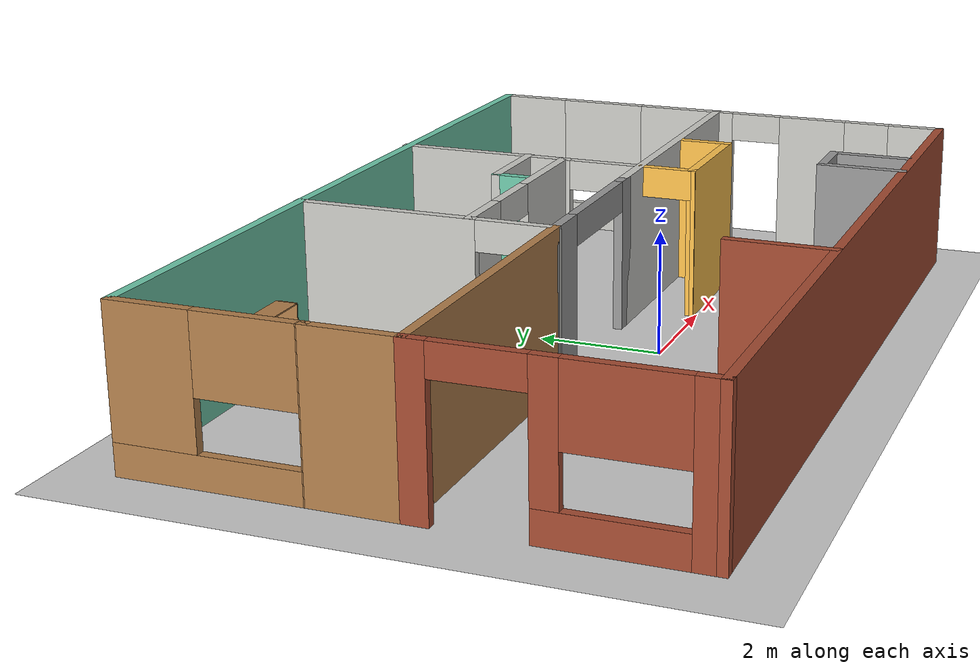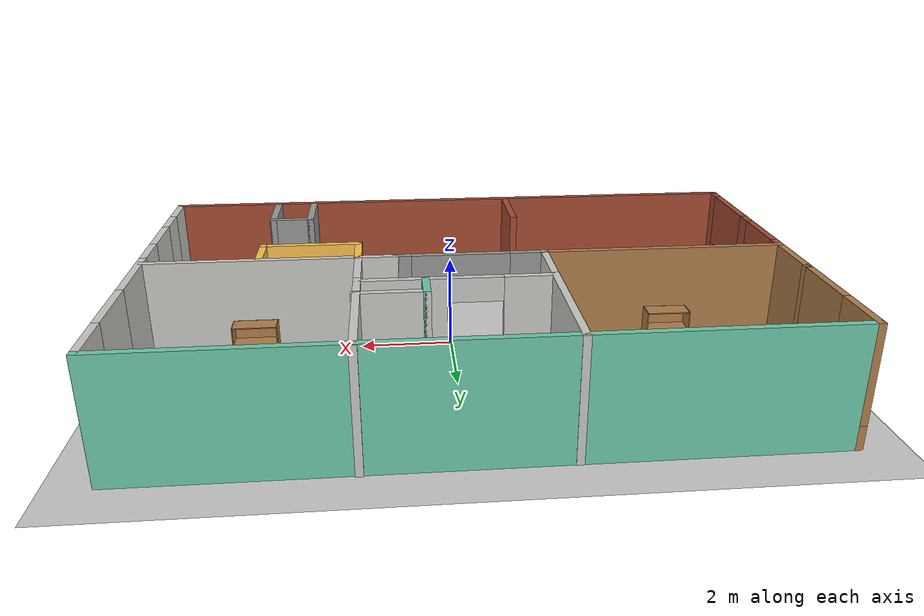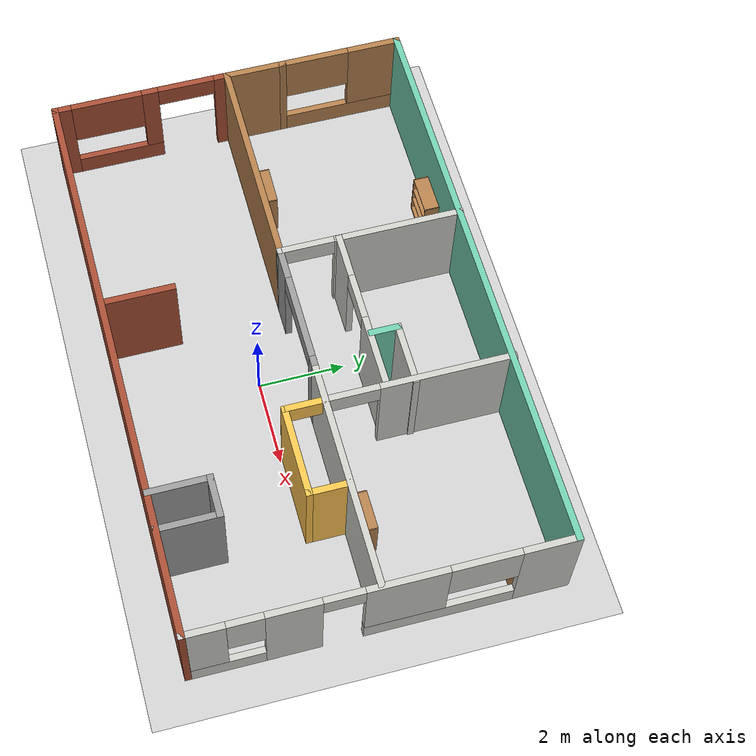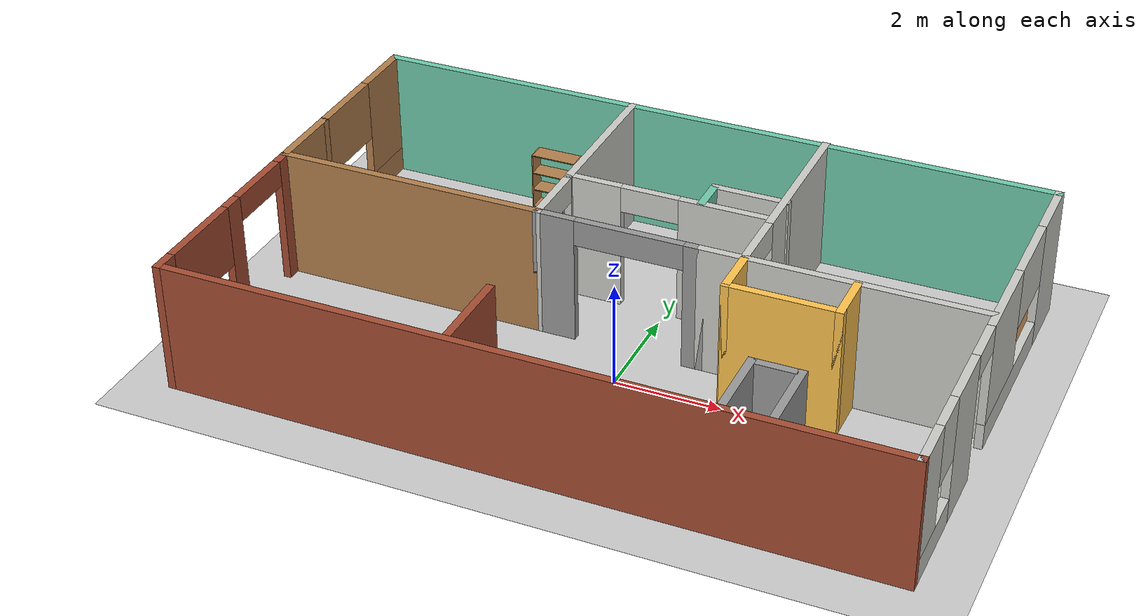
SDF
<sdf version="1.6">
 <world name="default">
  <model name="ground_plane">
   <static>1</static>
   <link name="link">
    <collision name="collision">
     <geometry><plane><normal>0 0 1</normal><size>100 100</size></plane></geometry>
     <surface>
      <contact><collide_bitmask>65535</collide_bitmask></contact>
      <friction><ode><mu>100</mu><mu2>50</mu2></ode></friction>
     </surface>
    </collision>
    <visual name="visual">
     <cast_shadows>0</cast_shadows>
     <geometry><plane><normal>0 0 1</normal><size>100 100</size></plane></geometry>
     <material>
      <script><uri>file://media/materials/scripts/gazebo.material</uri><name>Gazebo/Grey</name></script>
     </material>
    </visual>
   </link>
  </model>
  <model name="apartment">
   <pose>-0.330158 1.04797 0 0 -0 0</pose>
   <link name="Wall_0">
    <collision name="Wall_0_Collision">
     <geometry><box><size>1.5 0.15 2.5</size></box></geometry>
     <pose>0 0 1.25 0 -0 0</pose>
    </collision>
    <visual name="Wall_0_Visual">
     <pose>0 0 1.25 0 -0 0</pose>
     <geometry><box><size>1.5 0.15 2.5</size></box></geometry>
     <material>
      <script><uri>file://media/materials/scripts/gazebo.material</uri><name>Gazebo/Wood</name></script>
      <ambient>1 1 1 1</ambient>
     </material>
     <meta><layer>0</layer></meta>
    </visual>
    <pose>-6.675 0.636067 0 0 -0 1.5708</pose>
   </link>
   <link name="Wall_10">
    <collision name="Wall_10_Collision">
     <geometry><box><size>1.5 0.15 2.5</size></box></geometry>
     <pose>0 0 1.25 0 -0 0</pose>
    </collision>
    <visual name="Wall_10_Visual">
     <pose>0 0 1.25 0 -0 0</pose>
     <geometry><box><size>1.5 0.15 2.5</size></box></geometry>
     <material>
      <script><uri>file://media/materials/scripts/gazebo.material</uri><name>Gazebo/Grey</name></script>
      <ambient>1 1 1 1</ambient>
     </material>
     <meta><layer>0</layer></meta>
    </visual>
    <pose>3.45672 -3.50331 0 0 -0 1.5708</pose>
   </link>
   <link name="Wall_11">
    <collision name="Wall_11_Collision">
     <geometry><box><size>1 0.15 2.5</size></box></geometry>
     <pose>0 0 1.25 0 -0 0</pose>
    </collision>
    <visual name="Wall_11_Visual">
     <pose>0 0 1.25 0 -0 0</pose>
     <geometry><box><size>1 0.15 2.5</size></box></geometry>
     <material>
      <script><uri>file://media/materials/scripts/gazebo.material</uri><name>Gazebo/Grey</name></script>
      <ambient>1 1 1 1</ambient>
     </material>
     <meta><layer>0</layer></meta>
    </visual>
    <pose>3.88172 -2.82831 0 0 -0 0</pose>
   </link>
   <link name="Wall_12">
    <collision name="Wall_12_Collision">
     <geometry><box><size>1.5 0.15 2.5</size></box></geometry>
     <pose>0 0 1.25 0 -0 0</pose>
    </collision>
    <visual name="Wall_12_Visual">
     <pose>0 0 1.25 0 -0 0</pose>
     <geometry><box><size>1.5 0.15 2.5</size></box></geometry>
     <material>
      <script><uri>file://media/materials/scripts/gazebo.material</uri><name>Gazebo/Grey</name></script>
      <ambient>1 1 1 1</ambient>
     </material>
     <meta><layer>0</layer></meta>
    </visual>
    <pose>4.30672 -3.50331 0 0 -0 -1.5708</pose>
   </link>
   <link name="Wall_14">
    <collision name="Wall_14_Collision">
     <geometry><box><size>5.25 0.15 2.5</size></box></geometry>
     <pose>0 0 1.25 0 -0 0</pose>
    </collision>
    <visual name="Wall_14_Visual">
     <pose>0 0 1.25 0 -0 0</pose>
     <geometry><box><size>5.25 0.15 2.5</size></box></geometry>
     <material>
      <script><uri>file://media/materials/scripts/gazebo.material</uri><name>Gazebo/Wood</name></script>
      <ambient>1 1 1 1</ambient>
     </material>
     <meta><layer>0</layer></meta>
    </visual>
    <pose>-4.125 -0.038933 0 0 -0 0</pose>
   </link>
   <link name="Wall_15">
    <pose>-0.025 -0.038933 0 0 -0 0</pose>
    <visual name="Wall_15_Visual_0">
     <pose>-1.22589 0 1.25 0 -0 0</pose>
     <geometry><box><size>0.798214 0.15 2.5</size></box></geometry>
     <material>
      <script><uri>file://media/materials/scripts/gazebo.material</uri><name>Gazebo/Grey</name></script>
      <ambient>1 1 1 1</ambient>
     </material>
     <meta><layer>0</layer></meta>
    </visual>
    <collision name="Wall_15_Collision_0">
     <geometry><box><size>0.798214 0.15 2.5</size></box></geometry>
     <pose>-1.22589 0 1.25 0 -0 0</pose>
    </collision>
    <visual name="Wall_15_Visual_1">
     <pose>1.42628 0 1.25 0 -0 0</pose>
     <geometry><box><size>0.397441 0.15 2.5</size></box></geometry>
     <material>
      <script><uri>file://media/materials/scripts/gazebo.material</uri><name>Gazebo/Grey</name></script>
      <ambient>1 1 1 1</ambient>
     </material>
     <meta><layer>0</layer></meta>
    </visual>
    <collision name="Wall_15_Collision_1">
     <geometry><box><size>0.397441 0.15 2.5</size></box></geometry>
     <pose>1.42628 0 1.25 0 -0 0</pose>
    </collision>
    <visual name="Wall_15_Visual_2">
     <pose>0.200387 0 2.25 0 -0 0</pose>
     <geometry><box><size>2.05434 0.15 0.5</size></box></geometry>
     <material>
      <script><uri>file://media/materials/scripts/gazebo.material</uri><name>Gazebo/Grey</name></script>
      <ambient>1 1 1 1</ambient>
     </material>
     <meta><layer>0</layer></meta>
    </visual>
    <collision name="Wall_15_Collision_2">
     <geometry><box><size>2.05434 0.15 0.5</size></box></geometry>
     <pose>0.200387 0 2.25 0 -0 0</pose>
    </collision>
   </link>
   <link name="Wall_16">
    <collision name="Wall_16_Collision">
     <geometry><box><size>5.25 0.15 2.5</size></box></geometry>
     <pose>0 0 1.25 0 -0 0</pose>
    </collision>
    <visual name="Wall_16_Visual">
     <pose>0 0 1.25 0 -0 0</pose>
     <geometry><box><size>5.25 0.15 2.5</size></box></geometry>
     <material>
      <script><uri>file://media/materials/scripts/gazebo.material</uri><name>Gazebo/CeilingTiled</name></script>
      <ambient>1 1 1 1</ambient>
     </material>
     <meta><layer>0</layer></meta>
    </visual>
    <pose>4.075 -0.038933 0 0 -0 0</pose>
   </link>
   <link name="Wall_18">
    <pose>-1.57333 2.06494 0 0 -0 -1.57159</pose>
    <visual name="Wall_18_Visual_0">
     <pose>-0.663815 0 1.25 0 -0 0</pose>
     <geometry><box><size>3.03012 0.15 2.5</size></box></geometry>
     <material>
      <script><uri>file://media/materials/scripts/gazebo.material</uri><name>Gazebo/CeilingTiled</name></script>
      <ambient>0.435294 0.796078 0.67451 1</ambient>
     </material>
     <meta><layer>0</layer></meta>
    </visual>
    <collision name="Wall_18_Collision_0">
     <geometry><box><size>3.03012 0.15 2.5</size></box></geometry>
     <pose>-0.663815 0 1.25 0 -0 0</pose>
    </collision>
    <visual name="Wall_18_Visual_1">
     <pose>2.12248 0 1.25 0 -0 0</pose>
     <geometry><box><size>0.112794 0.15 2.5</size></box></geometry>
     <material>
      <script><uri>file://media/materials/scripts/gazebo.material</uri><name>Gazebo/CeilingTiled</name></script>
      <ambient>0.435294 0.796078 0.67451 1</ambient>
     </material>
     <meta><layer>0</layer></meta>
    </visual>
    <collision name="Wall_18_Collision_1">
     <geometry><box><size>0.112794 0.15 2.5</size></box></geometry>
     <pose>2.12248 0 1.25 0 -0 0</pose>
    </collision>
    <visual name="Wall_18_Visual_2">
     <pose>1.45867 0 2.25 0 -0 0</pose>
     <geometry><box><size>1.21484 0.15 0.5</size></box></geometry>
     <material>
      <script><uri>file://media/materials/scripts/gazebo.material</uri><name>Gazebo/CeilingTiled</name></script>
      <ambient>0.435294 0.796078 0.67451 1</ambient>
     </material>
     <meta><layer>0</layer></meta>
    </visual>
    <collision name="Wall_18_Collision_2">
     <geometry><box><size>1.21484 0.15 0.5</size></box></geometry>
     <pose>1.45867 0 2.25 0 -0 0</pose>
    </collision>
   </link>
   <link name="Wall_2">
    <pose>-6.675 2.73607 0 0 -0 1.5708</pose>
    <visual name="Wall_2_Visual_0">
     <pose>-1.41589 0 1.25 0 -0 0</pose>
     <geometry><box><size>0.168211 0.15 2.5</size></box></geometry>
     <material>
      <script><uri>file://media/materials/scripts/gazebo.material</uri><name>Gazebo/Wood</name></script>
      <ambient>1 1 1 1</ambient>
     </material>
     <meta><layer>0</layer></meta>
    </visual>
    <collision name="Wall_2_Collision_0">
     <geometry><box><size>0.168211 0.15 2.5</size></box></geometry>
     <pose>-1.41589 0 1.25 0 -0 0</pose>
    </collision>
    <visual name="Wall_2_Visual_1">
     <pose>0.084105 0 0.25 0 -0 0</pose>
     <geometry><box><size>2.83179 0.15 0.5</size></box></geometry>
     <material>
      <script><uri>file://media/materials/scripts/gazebo.material</uri><name>Gazebo/Wood</name></script>
      <ambient>1 1 1 1</ambient>
     </material>
     <meta><layer>0</layer></meta>
    </visual>
    <collision name="Wall_2_Collision_1">
     <geometry><box><size>2.83179 0.15 0.5</size></box></geometry>
     <pose>0.084105 0 0.25 0 -0 0</pose>
    </collision>
    <visual name="Wall_2_Visual_2">
     <pose>0.851397 0 1.5 0 -0 0</pose>
     <geometry><box><size>1.29721 0.15 2</size></box></geometry>
     <material>
      <script><uri>file://media/materials/scripts/gazebo.material</uri><name>Gazebo/Wood</name></script>
      <ambient>1 1 1 1</ambient>
     </material>
     <meta><layer>0</layer></meta>
    </visual>
    <collision name="Wall_2_Collision_2">
     <geometry><box><size>1.29721 0.15 2</size></box></geometry>
     <pose>0.851397 0 1.5 0 -0 0</pose>
    </collision>
    <visual name="Wall_2_Visual_3">
     <pose>-0.564498 0 1.9 0 -0 0</pose>
     <geometry><box><size>1.53458 0.15 1.2</size></box></geometry>
     <material>
      <script><uri>file://media/materials/scripts/gazebo.material</uri><name>Gazebo/Wood</name></script>
      <ambient>1 1 1 1</ambient>
     </material>
     <meta><layer>0</layer></meta>
    </visual>
    <collision name="Wall_2_Collision_3">
     <geometry><box><size>1.53458 0.15 1.2</size></box></geometry>
     <pose>-0.564498 0 1.9 0 -0 0</pose>
    </collision>
   </link>
   <link name="Wall_20">
    <pose>2.29014 2.13893 0 0 -0 -1.5708</pose>
    <visual name="Wall_20_Visual_0">
     <pose>-0.582353 0 1.25 0 -0 0</pose>
     <geometry><box><size>3.08529 0.15 2.5</size></box></geometry>
     <material>
      <script><uri>file://media/materials/scripts/gazebo.material</uri><name>Gazebo/CeilingTiled</name></script>
      <ambient>0.435294 0.796078 0.67451 1</ambient>
     </material>
     <meta><layer>0</layer></meta>
    </visual>
    <collision name="Wall_20_Collision_0">
     <geometry><box><size>3.08529 0.15 2.5</size></box></geometry>
     <pose>-0.582353 0 1.25 0 -0 0</pose>
    </collision>
    <visual name="Wall_20_Visual_1">
     <pose>1.54265 0 2.25 0 -0 0</pose>
     <geometry><box><size>1.16471 0.15 0.5</size></box></geometry>
     <material>
      <script><uri>file://media/materials/scripts/gazebo.material</uri><name>Gazebo/CeilingTiled</name></script>
      <ambient>0.435294 0.796078 0.67451 1</ambient>
     </material>
     <meta><layer>0</layer></meta>
    </visual>
    <collision name="Wall_20_Collision_1">
     <geometry><box><size>1.16471 0.15 0.5</size></box></geometry>
     <pose>1.54265 0 2.25 0 -0 0</pose>
    </collision>
   </link>
   <link name="Wall_22">
    <pose>0.360125 1.33205 0 0 -0 0</pose>
    <visual name="Wall_22_Visual_0">
     <pose>-1.45729 0 1.25 0 -0 0</pose>
     <geometry><box><size>1.08542 0.15 2.5</size></box></geometry>
     <material>
      <script><uri>file://media/materials/scripts/gazebo.material</uri><name>Gazebo/CeilingTiled</name></script>
      <ambient>0.435294 0.796078 0.67451 1</ambient>
     </material>
     <meta><layer>0</layer></meta>
    </visual>
    <collision name="Wall_22_Collision_0">
     <geometry><box><size>1.08542 0.15 2.5</size></box></geometry>
     <pose>-1.45729 0 1.25 0 -0 0</pose>
    </collision>
    <visual name="Wall_22_Visual_1">
     <pose>1.09765 0 1.25 0 -0 0</pose>
     <geometry><box><size>1.8047 0.15 2.5</size></box></geometry>
     <material>
      <script><uri>file://media/materials/scripts/gazebo.material</uri><name>Gazebo/CeilingTiled</name></script>
      <ambient>0.435294 0.796078 0.67451 1</ambient>
     </material>
     <meta><layer>0</layer></meta>
    </visual>
    <collision name="Wall_22_Collision_1">
     <geometry><box><size>1.8047 0.15 2.5</size></box></geometry>
     <pose>1.09765 0 1.25 0 -0 0</pose>
    </collision>
    <visual name="Wall_22_Visual_2">
     <pose>-0.359639 0 2.25 0 -0 0</pose>
     <geometry><box><size>1.10988 0.15 0.5</size></box></geometry>
     <material>
      <script><uri>file://media/materials/scripts/gazebo.material</uri><name>Gazebo/CeilingTiled</name></script>
      <ambient>0.435294 0.796078 0.67451 1</ambient>
     </material>
     <meta><layer>0</layer></meta>
    </visual>
    <collision name="Wall_22_Collision_2">
     <geometry><box><size>1.10988 0.15 0.5</size></box></geometry>
     <pose>-0.359639 0 2.25 0 -0 0</pose>
    </collision>
   </link>
   <link name="Wall_24">
    <collision name="Wall_24_Collision">
     <geometry><box><size>0.75 0.15 2.5</size></box></geometry>
     <pose>0 0 1.25 0 -0 0</pose>
    </collision>
    <visual name="Wall_24_Visual">
     <pose>0 0 1.25 0 -0 0</pose>
     <geometry><box><size>0.75 0.15 2.5</size></box></geometry>
     <material>
      <script><uri>file://media/materials/scripts/gazebo.material</uri><name>Gazebo/Grey</name></script>
      <ambient>0.435294 0.796078 0.67451 1</ambient>
     </material>
     <meta><layer>0</layer></meta>
    </visual>
    <pose>0.971184 1.66703 0 0 -0 1.5708</pose>
   </link>
   <link name="Wall_25">
    <collision name="Wall_25_Collision">
     <geometry><box><size>1.5 0.15 2.5</size></box></geometry>
     <pose>0 0 1.25 0 -0 0</pose>
    </collision>
    <visual name="Wall_25_Visual">
     <pose>0 0 1.25 0 -0 0</pose>
     <geometry><box><size>1.5 0.15 2.5</size></box></geometry>
     <material>
      <script><uri>file://media/materials/scripts/gazebo.material</uri><name>Gazebo/CeilingTiled</name></script>
      <ambient>0.435294 0.796078 0.67451 1</ambient>
     </material>
     <meta><layer>0</layer></meta>
    </visual>
    <pose>1.64618 1.96703 0 0 -0 0</pose>
   </link>
   <link name="Wall_27">
    <pose>2.30043 -0.509648 0 0 -0 -1.5708</pose>
    <visual name="Wall_27_Visual_0">
     <pose>-0.486364 0 1.25 0 -0 0</pose>
     <geometry><box><size>0.027272 0.15 2.5</size></box></geometry>
     <material>
      <script><uri>file://media/materials/scripts/gazebo.material</uri><name>Gazebo/Grey</name></script>
      <ambient>1 0.764706 0.305882 1</ambient>
     </material>
     <meta><layer>0</layer></meta>
    </visual>
    <collision name="Wall_27_Collision_0">
     <geometry><box><size>0.027272 0.15 2.5</size></box></geometry>
     <pose>-0.486364 0 1.25 0 -0 0</pose>
    </collision>
    <visual name="Wall_27_Visual_1">
     <pose>0.463636 0 1.25 0 -0 0</pose>
     <geometry><box><size>0.072728 0.15 2.5</size></box></geometry>
     <material>
      <script><uri>file://media/materials/scripts/gazebo.material</uri><name>Gazebo/Grey</name></script>
      <ambient>1 0.764706 0.305882 1</ambient>
     </material>
     <meta><layer>0</layer></meta>
    </visual>
    <collision name="Wall_27_Collision_1">
     <geometry><box><size>0.072728 0.15 2.5</size></box></geometry>
     <pose>0.463636 0 1.25 0 -0 0</pose>
    </collision>
    <visual name="Wall_27_Visual_2">
     <pose>-0.022728 0 2.25 0 -0 0</pose>
     <geometry><box><size>0.9 0.15 0.5</size></box></geometry>
     <material>
      <script><uri>file://media/materials/scripts/gazebo.material</uri><name>Gazebo/Grey</name></script>
      <ambient>1 0.764706 0.305882 1</ambient>
     </material>
     <meta><layer>0</layer></meta>
    </visual>
    <collision name="Wall_27_Collision_2">
     <geometry><box><size>0.9 0.15 0.5</size></box></geometry>
     <pose>-0.022728 0 2.25 0 -0 0</pose>
    </collision>
   </link>
   <link name="Wall_28">
    <collision name="Wall_28_Collision">
     <geometry><box><size>2.14199 0.15 2.5</size></box></geometry>
     <pose>0 0 1.25 0 -0 0</pose>
    </collision>
    <visual name="Wall_28_Visual">
     <pose>0 0 1.25 0 -0 0</pose>
     <geometry><box><size>2.14199 0.15 2.5</size></box></geometry>
     <material>
      <script><uri>file://media/materials/scripts/gazebo.material</uri><name>Gazebo/Grey</name></script>
      <ambient>1 0.764706 0.305882 1</ambient>
     </material>
     <meta><layer>0</layer></meta>
    </visual>
    <pose>3.31392 -0.934649 0 0 -0 0</pose>
   </link>
   <link name="Wall_29">
    <collision name="Wall_29_Collision">
     <geometry><box><size>1 0.15 2.5</size></box></geometry>
     <pose>0 0 1.25 0 -0 0</pose>
    </collision>
    <visual name="Wall_29_Visual">
     <pose>0 0 1.25 0 -0 0</pose>
     <geometry><box><size>1 0.15 2.5</size></box></geometry>
     <material>
      <script><uri>file://media/materials/scripts/gazebo.material</uri><name>Gazebo/Grey</name></script>
      <ambient>1 0.764706 0.305882 1</ambient>
     </material>
     <meta><layer>0</layer></meta>
    </visual>
    <pose>4.30991 -0.509648 0 0 -0 1.5708</pose>
   </link>
   <link name="Wall_3">
    <collision name="Wall_3_Collision">
     <geometry><box><size>13.5 0.15 2.5</size></box></geometry>
     <pose>0 0 1.25 0 -0 0</pose>
    </collision>
    <visual name="Wall_3_Visual">
     <pose>0 0 1.25 0 -0 0</pose>
     <geometry><box><size>13.5 0.15 2.5</size></box></geometry>
     <material>
      <script><uri>file://media/materials/scripts/gazebo.material</uri><name>Gazebo/Grey</name></script>
      <ambient>0.435294 0.796078 0.67451 1</ambient>
     </material>
     <meta><layer>0</layer></meta>
    </visual>
    <pose>-0 4.16107 0 0 -0 0</pose>
   </link>
   <link name="Wall_4">
    <pose>6.675 -0.013933 0 0 -0 -1.5708</pose>
    <visual name="Wall_4_Visual_0">
     <pose>-3.61014 0 1.25 0 -0 0</pose>
     <geometry><box><size>1.27972 0.15 2.5</size></box></geometry>
     <material>
      <script><uri>file://media/materials/scripts/gazebo.material</uri><name>Gazebo/CeilingTiled</name></script>
      <ambient>1 1 1 1</ambient>
     </material>
     <meta><layer>0</layer></meta>
    </visual>
    <collision name="Wall_4_Collision_0">
     <geometry><box><size>1.27972 0.15 2.5</size></box></geometry>
     <pose>-3.61014 0 1.25 0 -0 0</pose>
    </collision>
    <visual name="Wall_4_Visual_1">
     <pose>1.86221 0 1.25 0 -0 0</pose>
     <geometry><box><size>1.21383 0.15 2.5</size></box></geometry>
     <material>
      <script><uri>file://media/materials/scripts/gazebo.material</uri><name>Gazebo/CeilingTiled</name></script>
      <ambient>1 1 1 1</ambient>
     </material>
     <meta><layer>0</layer></meta>
    </visual>
    <collision name="Wall_4_Collision_1">
     <geometry><box><size>1.21383 0.15 2.5</size></box></geometry>
     <pose>1.86221 0 1.25 0 -0 0</pose>
    </collision>
    <visual name="Wall_4_Visual_2">
     <pose>-1.30749 0 0.25 0 -0 0</pose>
     <geometry><box><size>3.32558 0.15 0.5</size></box></geometry>
     <material>
      <script><uri>file://media/materials/scripts/gazebo.material</uri><name>Gazebo/CeilingTiled</name></script>
      <ambient>1 1 1 1</ambient>
     </material>
     <meta><layer>0</layer></meta>
    </visual>
    <collision name="Wall_4_Collision_2">
     <geometry><box><size>3.32558 0.15 0.5</size></box></geometry>
     <pose>-1.30749 0 0.25 0 -0 0</pose>
    </collision>
    <visual name="Wall_4_Visual_3">
     <pose>3.35956 0 0.25 0 -0 0</pose>
     <geometry><box><size>1.78087 0.15 0.5</size></box></geometry>
     <material>
      <script><uri>file://media/materials/scripts/gazebo.material</uri><name>Gazebo/CeilingTiled</name></script>
      <ambient>1 1 1 1</ambient>
     </material>
     <meta><layer>0</layer></meta>
    </visual>
    <collision name="Wall_4_Collision_3">
     <geometry><box><size>1.78087 0.15 0.5</size></box></geometry>
     <pose>3.35956 0 0.25 0 -0 0</pose>
    </collision>
    <visual name="Wall_4_Visual_4">
     <pose>-0.540201 0 1.5 0 -0 0</pose>
     <geometry><box><size>1.791 0.15 2</size></box></geometry>
     <material>
      <script><uri>file://media/materials/scripts/gazebo.material</uri><name>Gazebo/CeilingTiled</name></script>
      <ambient>1 1 1 1</ambient>
     </material>
     <meta><layer>0</layer></meta>
    </visual>
    <collision name="Wall_4_Collision_4">
     <geometry><box><size>1.791 0.15 2</size></box></geometry>
     <pose>-0.540201 0 1.5 0 -0 0</pose>
    </collision>
    <visual name="Wall_4_Visual_5">
     <pose>-0.540201 0 1.5 0 -0 0</pose>
     <geometry><box><size>1.791 0.15 2</size></box></geometry>
     <material>
      <script><uri>file://media/materials/scripts/gazebo.material</uri><name>Gazebo/CeilingTiled</name></script>
      <ambient>1 1 1 1</ambient>
     </material>
     <meta><layer>0</layer></meta>
    </visual>
    <collision name="Wall_4_Collision_5">
     <geometry><box><size>1.791 0.15 2</size></box></geometry>
     <pose>-0.540201 0 1.5 0 -0 0</pose>
    </collision>
    <visual name="Wall_4_Visual_6">
     <pose>3.75956 0 1.5 0 -0 0</pose>
     <geometry><box><size>0.980874 0.15 2</size></box></geometry>
     <material>
      <script><uri>file://media/materials/scripts/gazebo.material</uri><name>Gazebo/CeilingTiled</name></script>
      <ambient>1 1 1 1</ambient>
     </material>
     <meta><layer>0</layer></meta>
    </visual>
    <collision name="Wall_4_Collision_6">
     <geometry><box><size>0.980874 0.15 2</size></box></geometry>
     <pose>3.75956 0 1.5 0 -0 0</pose>
    </collision>
    <visual name="Wall_4_Visual_7">
     <pose>-2.20299 0 1.9 0 -0 0</pose>
     <geometry><box><size>1.53458 0.15 1.2</size></box></geometry>
     <material>
      <script><uri>file://media/materials/scripts/gazebo.material</uri><name>Gazebo/CeilingTiled</name></script>
      <ambient>1 1 1 1</ambient>
     </material>
     <meta><layer>0</layer></meta>
    </visual>
    <collision name="Wall_4_Collision_7">
     <geometry><box><size>1.53458 0.15 1.2</size></box></geometry>
     <pose>-2.20299 0 1.9 0 -0 0</pose>
    </collision>
    <visual name="Wall_4_Visual_8">
     <pose>2.86913 0 1.9 0 -0 0</pose>
     <geometry><box><size>0.8 0.15 1.2</size></box></geometry>
     <material>
      <script><uri>file://media/materials/scripts/gazebo.material</uri><name>Gazebo/CeilingTiled</name></script>
      <ambient>1 1 1 1</ambient>
     </material>
     <meta><layer>0</layer></meta>
    </visual>
    <collision name="Wall_4_Collision_8">
     <geometry><box><size>0.8 0.15 1.2</size></box></geometry>
     <pose>2.86913 0 1.9 0 -0 0</pose>
    </collision>
    <visual name="Wall_4_Visual_9">
     <pose>0.805298 0 2.25 0 -0 0</pose>
     <geometry><box><size>0.9 0.15 0.5</size></box></geometry>
     <material>
      <script><uri>file://media/materials/scripts/gazebo.material</uri><name>Gazebo/CeilingTiled</name></script>
      <ambient>1 1 1 1</ambient>
     </material>
     <meta><layer>0</layer></meta>
    </visual>
    <collision name="Wall_4_Collision_9">
     <geometry><box><size>0.9 0.15 0.5</size></box></geometry>
     <pose>0.805298 0 2.25 0 -0 0</pose>
    </collision>
    <visual name="Wall_4_Visual_10">
     <pose>0.805298 0 2.25 0 -0 0</pose>
     <geometry><box><size>0.9 0.15 0.5</size></box></geometry>
     <material>
      <script><uri>file://media/materials/scripts/gazebo.material</uri><name>Gazebo/CeilingTiled</name></script>
      <ambient>1 1 1 1</ambient>
     </material>
     <meta><layer>0</layer></meta>
    </visual>
    <collision name="Wall_4_Collision_10">
     <geometry><box><size>0.9 0.15 0.5</size></box></geometry>
     <pose>0.805298 0 2.25 0 -0 0</pose>
    </collision>
   </link>
   <link name="Wall_5">
    <collision name="Wall_5_Collision">
     <geometry><box><size>13.5 0.15 2.5</size></box></geometry>
     <pose>0 0 1.25 0 -0 0</pose>
    </collision>
    <visual name="Wall_5_Visual">
     <pose>0 0 1.25 0 -0 0</pose>
     <geometry><box><size>13.5 0.15 2.5</size></box></geometry>
     <material>
      <script><uri>file://media/materials/scripts/gazebo.material</uri><name>Gazebo/Bricks</name></script>
      <ambient>1 1 1 1</ambient>
     </material>
     <meta><layer>0</layer></meta>
    </visual>
    <pose>-0 -4.18893 0 0 -0 3.14159</pose>
   </link>
   <link name="Wall_6">
    <pose>-6.675 -2.11393 0 0 -0 1.5708</pose>
    <visual name="Wall_6_Visual_0">
     <pose>-1.92191 0 1.25 0 -0 0</pose>
     <geometry><box><size>0.456172 0.15 2.5</size></box></geometry>
     <material>
      <script><uri>file://media/materials/scripts/gazebo.material</uri><name>Gazebo/Bricks</name></script>
      <ambient>1 1 1 1</ambient>
     </material>
     <meta><layer>0</layer></meta>
    </visual>
    <collision name="Wall_6_Collision_0">
     <geometry><box><size>0.456172 0.15 2.5</size></box></geometry>
     <pose>-1.92191 0 1.25 0 -0 0</pose>
    </collision>
    <visual name="Wall_6_Visual_1">
     <pose>1.94735 0 1.25 0 -0 0</pose>
     <geometry><box><size>0.405298 0.15 2.5</size></box></geometry>
     <material>
      <script><uri>file://media/materials/scripts/gazebo.material</uri><name>Gazebo/Bricks</name></script>
      <ambient>1 1 1 1</ambient>
     </material>
     <meta><layer>0</layer></meta>
    </visual>
    <collision name="Wall_6_Collision_1">
     <geometry><box><size>0.405298 0.15 2.5</size></box></geometry>
     <pose>1.94735 0 1.25 0 -0 0</pose>
    </collision>
    <visual name="Wall_6_Visual_2">
     <pose>-0.651934 0 0.25 0 -0 0</pose>
     <geometry><box><size>2.08379 0.15 0.5</size></box></geometry>
     <material>
      <script><uri>file://media/materials/scripts/gazebo.material</uri><name>Gazebo/Bricks</name></script>
      <ambient>1 1 1 1</ambient>
     </material>
     <meta><layer>0</layer></meta>
    </visual>
    <collision name="Wall_6_Collision_2">
     <geometry><box><size>2.08379 0.15 0.5</size></box></geometry>
     <pose>-0.651934 0 0.25 0 -0 0</pose>
    </collision>
    <visual name="Wall_6_Visual_3">
     <pose>0.194063 0 1.5 0 -0 0</pose>
     <geometry><box><size>0.391795 0.15 2</size></box></geometry>
     <material>
      <script><uri>file://media/materials/scripts/gazebo.material</uri><name>Gazebo/Bricks</name></script>
      <ambient>1 1 1 1</ambient>
     </material>
     <meta><layer>0</layer></meta>
    </visual>
    <collision name="Wall_6_Collision_3">
     <geometry><box><size>0.391795 0.15 2</size></box></geometry>
     <pose>0.194063 0 1.5 0 -0 0</pose>
    </collision>
    <visual name="Wall_6_Visual_4">
     <pose>-0.847831 0 1.9 0 -0 0</pose>
     <geometry><box><size>1.69199 0.15 1.2</size></box></geometry>
     <material>
      <script><uri>file://media/materials/scripts/gazebo.material</uri><name>Gazebo/Bricks</name></script>
      <ambient>1 1 1 1</ambient>
     </material>
     <meta><layer>0</layer></meta>
    </visual>
    <collision name="Wall_6_Collision_4">
     <geometry><box><size>1.69199 0.15 1.2</size></box></geometry>
     <pose>-0.847831 0 1.9 0 -0 0</pose>
    </collision>
    <visual name="Wall_6_Visual_5">
     <pose>1.06733 0 2.25 0 -0 0</pose>
     <geometry><box><size>1.35474 0.15 0.5</size></box></geometry>
     <material>
      <script><uri>file://media/materials/scripts/gazebo.material</uri><name>Gazebo/Bricks</name></script>
      <ambient>1 1 1 1</ambient>
     </material>
     <meta><layer>0</layer></meta>
    </visual>
    <collision name="Wall_6_Collision_5">
     <geometry><box><size>1.35474 0.15 0.5</size></box></geometry>
     <pose>1.06733 0 2.25 0 -0 0</pose>
    </collision>
   </link>
   <link name="Wall_8">
    <collision name="Wall_8_Collision">
     <geometry><box><size>1.75 0.15 2.5</size></box></geometry>
     <pose>0 0 1.25 0 -0 0</pose>
    </collision>
    <visual name="Wall_8_Visual">
     <pose>0 0 1.25 0 -0 0</pose>
     <geometry><box><size>1.75 0.15 2.5</size></box></geometry>
     <material>
      <script><uri>file://media/materials/scripts/gazebo.material</uri><name>Gazebo/Bricks</name></script>
      <ambient>1 1 1 1</ambient>
     </material>
     <meta><layer>0</layer></meta>
    </visual>
    <pose>-1.26997 -3.37831 0 0 -0 1.5708</pose>
   </link>
   <static>1</static>
  </model>
  <model name="bookshelf">
   <static>1</static>
   <link name="link">
    <inertial><mass>1</mass></inertial>
    <collision name="back">
     <pose>0 0.005 0.6 0 -0 0</pose>
     <geometry><box><size>0.9 0.01 1.2</size></box></geometry>
    </collision>
    <visual name="visual1">
     <pose>0 0.005 0.6 0 -0 0</pose>
     <geometry><box><size>0.9 0.01 1.2</size></box></geometry>
     <material>
      <script><uri>file://media/materials/scripts/gazebo.material</uri><name>Gazebo/Wood</name></script>
     </material>
    </visual>
    <collision name="left_side">
     <pose>0.45 -0.195 0.6 0 -0 0</pose>
     <geometry><box><size>0.02 0.4 1.2</size></box></geometry>
    </collision>
    <visual name="visual2">
     <pose>0.45 -0.195 0.6 0 -0 0</pose>
     <geometry><box><size>0.02 0.4 1.2</size></box></geometry>
     <material>
      <script><uri>file://media/materials/scripts/gazebo.material</uri><name>Gazebo/Wood</name></script>
     </material>
    </visual>
    <collision name="right_side">
     <pose>-0.45 -0.195 0.6 0 -0 0</pose>
     <geometry><box><size>0.02 0.4 1.2</size></box></geometry>
    </collision>
    <visual name="visual3">
     <pose>-0.45 -0.195 0.6 0 -0 0</pose>
     <geometry><box><size>0.02 0.4 1.2</size></box></geometry>
     <material>
      <script><uri>file://media/materials/scripts/gazebo.material</uri><name>Gazebo/Wood</name></script>
     </material>
    </visual>
    <collision name="bottom">
     <pose>0 -0.195 0.03 0 -0 0</pose>
     <geometry><box><size>0.88 0.4 0.06</size></box></geometry>
    </collision>
    <visual name="visual4">
     <pose>0 -0.195 0.03 0 -0 0</pose>
     <geometry><box><size>0.88 0.4 0.06</size></box></geometry>
     <material>
      <script><uri>file://media/materials/scripts/gazebo.material</uri><name>Gazebo/Wood</name></script>
     </material>
    </visual>
    <collision name="top">
     <pose>0 -0.195 1.19 0 -0 0</pose>
     <geometry><box><size>0.88 0.4 0.02</size></box></geometry>
    </collision>
    <visual name="visual5">
     <pose>0 -0.195 1.19 0 -0 0</pose>
     <geometry><box><size>0.88 0.4 0.02</size></box></geometry>
     <material>
      <script><uri>file://media/materials/scripts/gazebo.material</uri><name>Gazebo/Wood</name></script>
     </material>
    </visual>
    <collision name="low_shelf">
     <pose>0 -0.195 0.43 0 -0 0</pose>
     <geometry><box><size>0.88 0.4 0.02</size></box></geometry>
    </collision>
    <visual name="visual6">
     <pose>0 -0.195 0.43 0 -0 0</pose>
     <geometry><box><size>0.88 0.4 0.02</size></box></geometry>
     <material>
      <script><uri>file://media/materials/scripts/gazebo.material</uri><name>Gazebo/Wood</name></script>
     </material>
    </visual>
    <collision name="high_shelf">
     <pose>0 -0.195 0.8 0 -0 0</pose>
     <geometry><box><size>0.88 0.4 0.02</size></box></geometry>
    </collision>
    <visual name="visual7">
     <pose>0 -0.195 0.8 0 -0 0</pose>
     <geometry><box><size>0.88 0.4 0.02</size></box></geometry>
     <material>
      <script><uri>file://media/materials/scripts/gazebo.material</uri><name>Gazebo/Wood</name></script>
     </material>
    </visual>
   </link>
   <pose>-3.38293 5.17313 0 0 -0 0</pose>
  </model>
  <model name="bookshelf_0">
   <static>1</static>
   <link name="link">
    <inertial><mass>1</mass></inertial>
    <collision name="back">
     <pose>0 0.005 0.6 0 -0 0</pose>
     <geometry><box><size>0.9 0.01 1.2</size></box></geometry>
    </collision>
    <visual name="visual1">
     <pose>0 0.005 0.6 0 -0 0</pose>
     <geometry><box><size>0.9 0.01 1.2</size></box></geometry>
     <material>
      <script><uri>file://media/materials/scripts/gazebo.material</uri><name>Gazebo/Wood</name></script>
     </material>
    </visual>
    <collision name="left_side">
     <pose>0.45 -0.195 0.6 0 -0 0</pose>
     <geometry><box><size>0.02 0.4 1.2</size></box></geometry>
    </collision>
    <visual name="visual2">
     <pose>0.45 -0.195 0.6 0 -0 0</pose>
     <geometry><box><size>0.02 0.4 1.2</size></box></geometry>
     <material>
      <script><uri>file://media/materials/scripts/gazebo.material</uri><name>Gazebo/Wood</name></script>
     </material>
    </visual>
    <collision name="right_side">
     <pose>-0.45 -0.195 0.6 0 -0 0</pose>
     <geometry><box><size>0.02 0.4 1.2</size></box></geometry>
    </collision>
    <visual name="visual3">
     <pose>-0.45 -0.195 0.6 0 -0 0</pose>
     <geometry><box><size>0.02 0.4 1.2</size></box></geometry>
     <material>
      <script><uri>file://media/materials/scripts/gazebo.material</uri><name>Gazebo/Wood</name></script>
     </material>
    </visual>
    <collision name="bottom">
     <pose>0 -0.195 0.03 0 -0 0</pose>
     <geometry><box><size>0.88 0.4 0.06</size></box></geometry>
    </collision>
    <visual name="visual4">
     <pose>0 -0.195 0.03 0 -0 0</pose>
     <geometry><box><size>0.88 0.4 0.06</size></box></geometry>
     <material>
      <script><uri>file://media/materials/scripts/gazebo.material</uri><name>Gazebo/Wood</name></script>
     </material>
    </visual>
    <collision name="top">
     <pose>0 -0.195 1.19 0 -0 0</pose>
     <geometry><box><size>0.88 0.4 0.02</size></box></geometry>
    </collision>
    <visual name="visual5">
     <pose>0 -0.195 1.19 0 -0 0</pose>
     <geometry><box><size>0.88 0.4 0.02</size></box></geometry>
     <material>
      <script><uri>file://media/materials/scripts/gazebo.material</uri><name>Gazebo/Wood</name></script>
     </material>
    </visual>
    <collision name="low_shelf">
     <pose>0 -0.195 0.43 0 -0 0</pose>
     <geometry><box><size>0.88 0.4 0.02</size></box></geometry>
    </collision>
    <visual name="visual6">
     <pose>0 -0.195 0.43 0 -0 0</pose>
     <geometry><box><size>0.88 0.4 0.02</size></box></geometry>
     <material>
      <script><uri>file://media/materials/scripts/gazebo.material</uri><name>Gazebo/Wood</name></script>
     </material>
    </visual>
    <collision name="high_shelf">
     <pose>0 -0.195 0.8 0 -0 0</pose>
     <geometry><box><size>0.88 0.4 0.02</size></box></geometry>
    </collision>
    <visual name="visual7">
     <pose>0 -0.195 0.8 0 -0 0</pose>
     <geometry><box><size>0.88 0.4 0.02</size></box></geometry>
     <material>
      <script><uri>file://media/materials/scripts/gazebo.material</uri><name>Gazebo/Wood</name></script>
     </material>
    </visual>
   </link>
   <pose>-4.55744 1.10863 0 0 -0 3.12482</pose>
  </model>
  <model name="bookshelf_1">
   <static>1</static>
   <link name="link">
    <inertial><mass>1</mass></inertial>
    <collision name="back">
     <pose>0 0.005 0.6 0 -0 0</pose>
     <geometry><box><size>0.9 0.01 1.2</size></box></geometry>
    </collision>
    <visual name="visual1">
     <pose>0 0.005 0.6 0 -0 0</pose>
     <geometry><box><size>0.9 0.01 1.2</size></box></geometry>
     <material>
      <script><uri>file://media/materials/scripts/gazebo.material</uri><name>Gazebo/Wood</name></script>
     </material>
    </visual>
    <collision name="left_side">
     <pose>0.45 -0.195 0.6 0 -0 0</pose>
     <geometry><box><size>0.02 0.4 1.2</size></box></geometry>
    </collision>
    <visual name="visual2">
     <pose>0.45 -0.195 0.6 0 -0 0</pose>
     <geometry><box><size>0.02 0.4 1.2</size></box></geometry>
     <material>
      <script><uri>file://media/materials/scripts/gazebo.material</uri><name>Gazebo/Wood</name></script>
     </material>
    </visual>
    <collision name="right_side">
     <pose>-0.45 -0.195 0.6 0 -0 0</pose>
     <geometry><box><size>0.02 0.4 1.2</size></box></geometry>
    </collision>
    <visual name="visual3">
     <pose>-0.45 -0.195 0.6 0 -0 0</pose>
     <geometry><box><size>0.02 0.4 1.2</size></box></geometry>
     <material>
      <script><uri>file://media/materials/scripts/gazebo.material</uri><name>Gazebo/Wood</name></script>
     </material>
    </visual>
    <collision name="bottom">
     <pose>0 -0.195 0.03 0 -0 0</pose>
     <geometry><box><size>0.88 0.4 0.06</size></box></geometry>
    </collision>
    <visual name="visual4">
     <pose>0 -0.195 0.03 0 -0 0</pose>
     <geometry><box><size>0.88 0.4 0.06</size></box></geometry>
     <material>
      <script><uri>file://media/materials/scripts/gazebo.material</uri><name>Gazebo/Wood</name></script>
     </material>
    </visual>
    <collision name="top">
     <pose>0 -0.195 1.19 0 -0 0</pose>
     <geometry><box><size>0.88 0.4 0.02</size></box></geometry>
    </collision>
    <visual name="visual5">
     <pose>0 -0.195 1.19 0 -0 0</pose>
     <geometry><box><size>0.88 0.4 0.02</size></box></geometry>
     <material>
      <script><uri>file://media/materials/scripts/gazebo.material</uri><name>Gazebo/Wood</name></script>
     </material>
    </visual>
    <collision name="low_shelf">
     <pose>0 -0.195 0.43 0 -0 0</pose>
     <geometry><box><size>0.88 0.4 0.02</size></box></geometry>
    </collision>
    <visual name="visual6">
     <pose>0 -0.195 0.43 0 -0 0</pose>
     <geometry><box><size>0.88 0.4 0.02</size></box></geometry>
     <material>
      <script><uri>file://media/materials/scripts/gazebo.material</uri><name>Gazebo/Wood</name></script>
     </material>
    </visual>
    <collision name="high_shelf">
     <pose>0 -0.195 0.8 0 -0 0</pose>
     <geometry><box><size>0.88 0.4 0.02</size></box></geometry>
    </collision>
    <visual name="visual7">
     <pose>0 -0.195 0.8 0 -0 0</pose>
     <geometry><box><size>0.88 0.4 0.02</size></box></geometry>
     <material>
      <script><uri>file://media/materials/scripts/gazebo.material</uri><name>Gazebo/Wood</name></script>
     </material>
    </visual>
   </link>
   <pose>4.131 1.09392 0 0 0 -3.13705</pose>
  </model>
  <model name="cabinet">
   <static>1</static>
   <link name="cabinet_bottom_plate">
    <inertial>
     <pose>0 0 -1 0 -0 0</pose>
     <inertia><ixx>2.05</ixx><ixy>0</ixy><ixz>0</ixz><iyy>2.05</iyy><iyz>0</iyz><izz>2.05</izz></inertia>
     <mass>25</mass>
    </inertial>
    <collision name="cabinet_bottom_plate_geom">
     <pose>0 0 0.01 0 -0 0</pose>
     <geometry><box><size>0.45 0.45 0.02</size></box></geometry>
    </collision>
    <visual name="cabinet_bottom_plate_geom_visual">
     <pose>0 0 0.01 0 -0 0</pose>
     <geometry><box><size>0.45 0.45 0.02</size></box></geometry>
     <material>
      <script><uri>file://media/materials/scripts/gazebo.material</uri><name>Gazebo/Wood</name></script>
     </material>
    </visual>
    <collision name="cabinet_bottom_plate_geom_cabinet_back_plate">
     <pose>0.235 0 0.51 0 -0 0</pose>
     <geometry><box><size>0.02 0.45 1.02</size></box></geometry>
    </collision>
    <visual name="cabinet_bottom_plate_geom_cabinet_back_plate_visual">
     <pose>0.235 0 0.51 0 -0 0</pose>
     <geometry><box><size>0.02 0.45 1.02</size></box></geometry>
     <material>
      <script><uri>file://media/materials/scripts/gazebo.material</uri><name>Gazebo/Wood</name></script>
     </material>
    </visual>
    <collision name="cabinet_bottom_plate_geom_cabinet_left_plate">
     <pose>0 0.235 0.51 0 -0 0</pose>
     <geometry><box><size>0.45 0.02 1.02</size></box></geometry>
    </collision>
    <visual name="cabinet_bottom_plate_geom_cabinet_left_plate_visual">
     <pose>0 0.235 0.51 0 -0 0</pose>
     <geometry><box><size>0.45 0.02 1.02</size></box></geometry>
     <material>
      <script><uri>file://media/materials/scripts/gazebo.material</uri><name>Gazebo/Wood</name></script>
     </material>
    </visual>
    <collision name="cabinet_bottom_plate_geom_cabinet_middle_plate">
     <pose>0 0 0.51 0 -0 0</pose>
     <geometry><box><size>0.45 0.45 0.02</size></box></geometry>
    </collision>
    <visual name="cabinet_bottom_plate_geom_cabinet_middle_plate_visual">
     <pose>0 0 0.51 0 -0 0</pose>
     <geometry><box><size>0.45 0.45 0.02</size></box></geometry>
     <material>
      <script><uri>file://media/materials/scripts/gazebo.material</uri><name>Gazebo/Wood</name></script>
     </material>
    </visual>
    <collision name="cabinet_bottom_plate_geom_cabinet_right_plate">
     <pose>0 -0.235 0.51 0 -0 0</pose>
     <geometry><box><size>0.45 0.02 1.02</size></box></geometry>
    </collision>
    <visual name="cabinet_bottom_plate_geom_cabinet_right_plate_visual">
     <pose>0 -0.235 0.51 0 -0 0</pose>
     <geometry><box><size>0.45 0.02 1.02</size></box></geometry>
     <material>
      <script><uri>file://media/materials/scripts/gazebo.material</uri><name>Gazebo/Wood</name></script>
     </material>
    </visual>
    <collision name="cabinet_bottom_plate_geom_cabinet_top_plate">
     <pose>0 0 1.01 0 -0 0</pose>
     <geometry><box><size>0.45 0.45 0.02</size></box></geometry>
    </collision>
    <visual name="cabinet_bottom_plate_geom_cabinet_top_plate_visual">
     <pose>0 0 1.01 0 -0 0</pose>
     <geometry><box><size>0.45 0.45 0.02</size></box></geometry>
     <material>
      <script><uri>file://media/materials/scripts/gazebo.material</uri><name>Gazebo/Wood</name></script>
     </material>
    </visual>
   </link>
   <pose>6.05057 4.26434 0 0 -0 0</pose>
  </model>
 </world>
</sdf>
